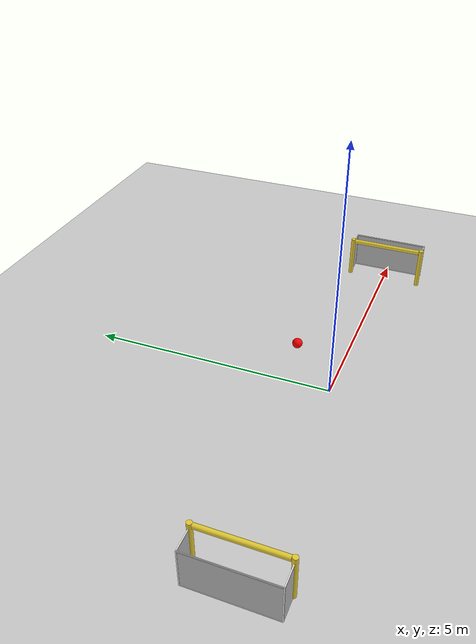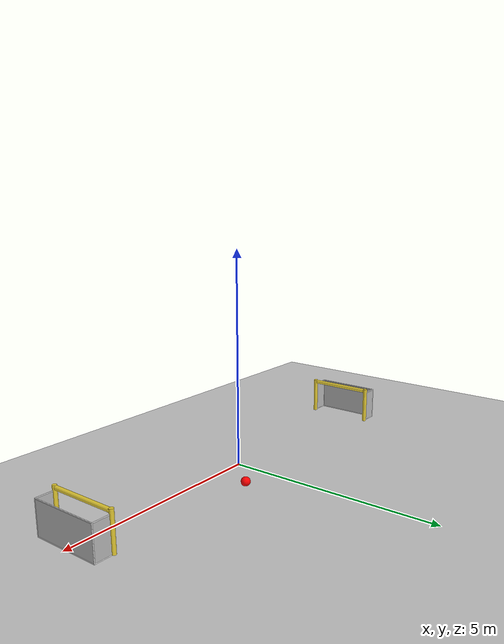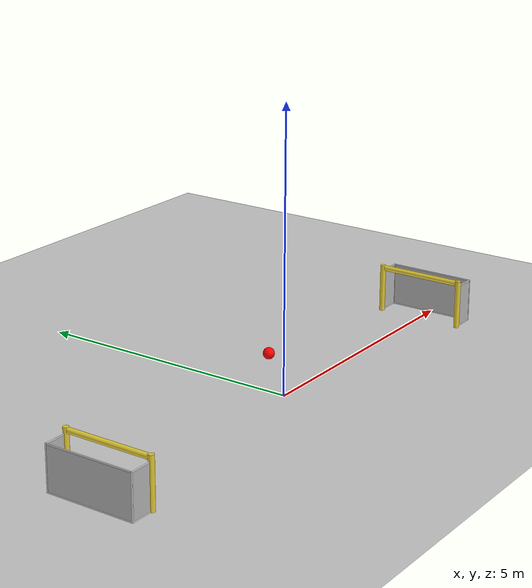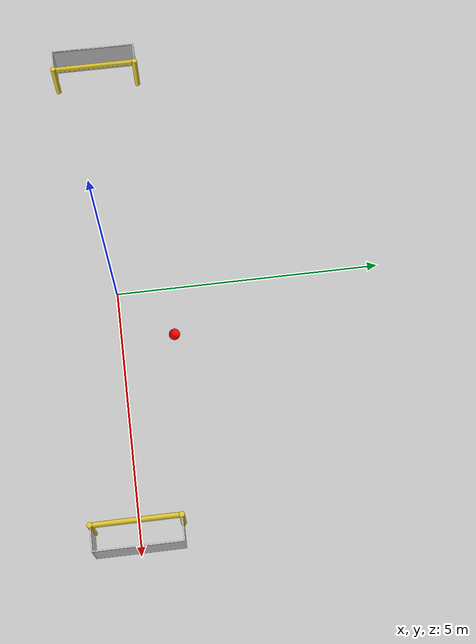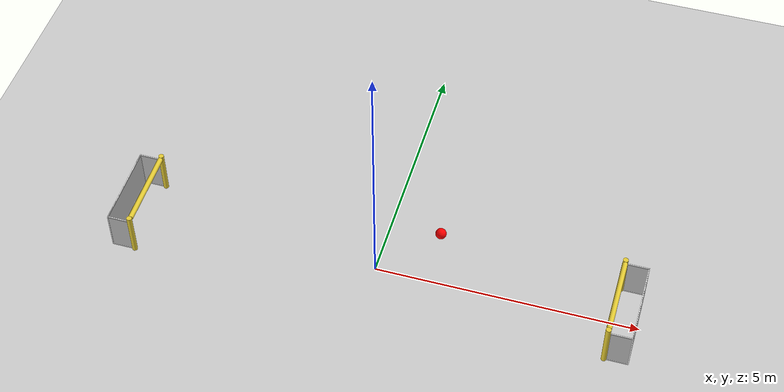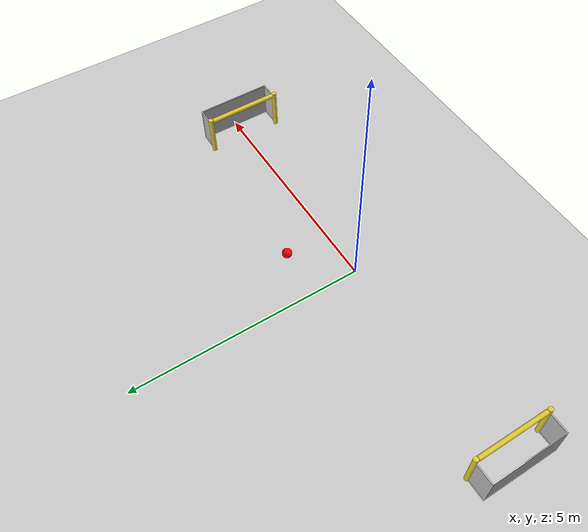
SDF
<sdf version="1.4">
 <world name="default">
  <include><uri>model://sun</uri></include>
  <include><uri>model://ground_plane</uri></include>
  <include><pose>-4.5 0 0 0 0 3.1416</pose><uri>model://robocup14_spl_goal</uri></include>
  <include><pose>4.5 0 0 0 0 0</pose><uri>model://robocup14_spl_goal</uri></include>
  <include><uri>model://soccer</uri></include>
 </world>
</sdf>

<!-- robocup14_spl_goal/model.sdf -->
<sdf version="1.5">
  <model name="RoboCup 2014 SPL Goal">
    <static>true</static>
    <link name="left_post">
      <pose>0 0.8 0.45 0 0 0</pose>
      <collision name="collision">
        <geometry>
          <cylinder>
            <radius>0.05</radius>
            <length>0.9</length>
          </cylinder>
        </geometry>
      </collision>
      <visual name="visual">
        <geometry>
          <cylinder>
            <radius>0.05</radius>
            <length>0.9</length>
          </cylinder>
        </geometry>
        <material>
          <script>
            <uri>file://media/materials/scripts/gazebo.material</uri>
            <name>Gazebo/ZincYellow</name>
          </script>
        </material>
      </visual>
    </link>
    <link name="left_support_horiz_lower">
      <pose>0.24 0.8 0.01 0 0 0</pose>
      <collision name="collision">
        <geometry>
          <box>
            <size>0.38 0.02 0.02</size>
          </box>
        </geometry>
      </collision>
      <visual name="visual">
        <geometry>
          <box>
            <size>0.38 0.02 0.02</size>
          </box>
        </geometry>
        <material>
          <script>
            <uri>file://media/materials/scripts/gazebo.material</uri>
            <name>Gazebo/White</name>
          </script>
        </material>
      </visual>
    </link>
    <link name="left_support_horiz_upper">
      <pose>0.24 0.8 0.79 0 0 0</pose>
      <collision name="collision">
        <geometry>
          <box>
            <size>0.38 0.02 0.02</size>
          </box>
        </geometry>
      </collision>
      <visual name="visual">
        <geometry>
          <box>
            <size>0.38 0.02 0.02</size>
          </box>
        </geometry>
        <material>
          <script>
            <uri>file://media/materials/scripts/gazebo.material</uri>
            <name>Gazebo/White</name>
          </script>
        </material>
      </visual>
    </link>
    <link name="left_support_vertical">
      <pose>0.44 0.8 0.4 0 1.5708 0</pose>
      <collision name="collision">
        <geometry>
          <box>
            <size>0.80 0.02 0.02</size>
          </box>
        </geometry>
      </collision>
      <visual name="visual">
        <geometry>
          <box>
            <size>0.80 0.02 0.02</size>
          </box>
        </geometry>
        <material>
          <script>
            <uri>file://media/materials/scripts/gazebo.material</uri>
            <name>Gazebo/White</name>
          </script>
        </material>
      </visual>
    </link>
    <link name="right_support_horiz_lower">
      <pose>0.24 -0.8 0.01 0 0 0</pose>
      <collision name="collision">
        <geometry>
          <box>
            <size>0.38 0.02 0.02</size>
          </box>
        </geometry>
      </collision>
      <visual name="visual">
        <geometry>
          <box>
            <size>0.38 0.02 0.02</size>
          </box>
        </geometry>
        <material>
          <script>
            <uri>file://media/materials/scripts/gazebo.material</uri>
            <name>Gazebo/White</name>
          </script>
        </material>
      </visual>
    </link>
    <link name="right_support_horiz_upper">
      <pose>0.24 -0.8 0.79 0 0 0</pose>
      <collision name="collision">
        <geometry>
          <box>
            <size>0.38 0.02 0.02</size>
          </box>
        </geometry>
      </collision>
      <visual name="visual">
        <geometry>
          <box>
            <size>0.38 0.02 0.02</size>
          </box>
        </geometry>
        <material>
          <script>
            <uri>file://media/materials/scripts/gazebo.material</uri>
            <name>Gazebo/White</name>
          </script>
        </material>
      </visual>
    </link>
    <link name="right_support_vertical">
      <pose>0.44 -0.8 0.4 0 1.5708 0</pose>
      <collision name="collision">
        <geometry>
          <box>
            <size>0.80 0.02 0.02</size>
          </box>
        </geometry>
      </collision>
      <visual name="visual">
        <geometry>
          <box>
            <size>0.80 0.02 0.02</size>
          </box>
        </geometry>
        <material>
          <script>
            <uri>file://media/materials/scripts/gazebo.material</uri>
            <name>Gazebo/White</name>
          </script>
        </material>
      </visual>
    </link>
    <link name="center_support_horiz_lower">
      <pose>0.44 0 0.01 0 1.5708 0</pose>
      <collision name="collision">
        <geometry>
          <box>
            <size>0.02 1.58 0.02</size>
          </box>
        </geometry>
      </collision>
      <visual name="visual">
        <geometry>
          <box>
            <size>0.02 1.58 0.02</size>
          </box>
        </geometry>
        <material>
          <script>
            <uri>file://media/materials/scripts/gazebo.material</uri>
            <name>Gazebo/White</name>
          </script>
        </material>
      </visual>
    </link>
    <link name="center_support_horiz_upper">
      <pose>0.44 0 0.79 0 1.5708 0</pose>
      <collision name="collision">
        <geometry>
          <box>
            <size>0.02 1.58 0.02</size>
          </box>
        </geometry>
      </collision>
      <visual name="visual">
        <geometry>
          <box>
            <size>0.02 1.58 0.02</size>
          </box>
        </geometry>
        <material>
          <script>
            <uri>file://media/materials/scripts/gazebo.material</uri>
            <name>Gazebo/White</name>
          </script>
        </material>
      </visual>
    </link>
    <link name="right_post">
      <pose>0 -0.8 0.45 0 0 0</pose>
      <collision name="collision">
        <geometry>
          <cylinder>
            <radius>0.05</radius>
            <length>0.9</length>
          </cylinder>
        </geometry>
      </collision>
      <visual name="visual">
        <geometry>
          <cylinder>
            <radius>0.05</radius>
            <length>0.9</length>
          </cylinder>
        </geometry>
        <material>
          <script>
            <uri>file://media/materials/scripts/gazebo.material</uri>
            <name>Gazebo/ZincYellow</name>
          </script>
        </material>
      </visual>
    </link>
    <link name="crossbar">
      <pose>0 0 0.85 1.57 1.57 0</pose>
      <collision name="collision">
        <geometry>
          <cylinder>
            <radius>0.05</radius>
            <length>1.5</length>
          </cylinder>
        </geometry>
      </collision>
      <visual name="visual">
        <geometry>
          <cylinder>
            <radius>0.05</radius>
            <length>1.5</length>
          </cylinder>
        </geometry>
        <material>
          <script>
            <uri>file://media/materials/scripts/gazebo.material</uri>
            <name>Gazebo/ZincYellow</name>
          </script>
        </material>
      </visual>
    </link>
    <link name="center_net">
      <pose>0.44 0 0.40 0 0 0</pose>
      <collision name="collision">
        <geometry>
          <box>
            <size>0.01 1.6 0.80</size>
          </box>
        </geometry>
      </collision>
      <visual name="visual">
        <geometry>
          <box>
            <size>0.01 1.6 0.80</size>
          </box>
        </geometry>
        <material>
          <script>
            <uri>model://../model_source/models/robocup09_spl_field/materials/scripts/</uri>
            <uri>model://../model_source/models/robocup09_spl_field/materials/textures/</uri>
            <name>RoboCup/Net</name>
          </script>
        </material>
      </visual>
    </link>
    <link name="left_net">
      <pose>0.24 0.8 0.40 0 0 0</pose>
      <collision name="collision">
        <geometry>
          <box>
            <size>0.38 0.01 0.76</size>
          </box>
        </geometry>
      </collision>
      <visual name="visual">
        <geometry>
          <box>
            <size>0.38 0.01 0.76</size>
          </box>
        </geometry>
        <material>
          <script>
            <uri>model://../model_source/models/robocup09_spl_field/materials/scripts/</uri>
            <uri>model://../model_source/models/robocup09_spl_field/materials/textures/</uri>
            <name>RoboCup/Net</name>
          </script>
        </material>
      </visual>
    </link>
    <link name="right_net">
      <pose>0.24 -0.8 0.40 0 0 0</pose>
      <collision name="collision">
        <geometry>
          <box>
            <size>0.38 0.01 0.76</size>
          </box>
        </geometry>
      </collision>
      <visual name="visual">
        <geometry>
          <box>
            <size>0.38 0.01 0.76</size>
          </box>
        </geometry>
        <material>
          <script>
            <uri>model://../model_source/models/robocup09_spl_field/materials/scripts/</uri>
            <uri>model://../model_source/models/robocup09_spl_field/materials/textures/</uri>
            <name>RoboCup/Net</name>
          </script>
        </material>
      </visual>
    </link>
  </model>
</sdf>

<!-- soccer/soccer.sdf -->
<sdf version="1.4">
   <model name="soccer">
   <pose>1 1 0.2 0 0 0</pose>
        <link name ='link'>
        <pose>0 0 0 0 0 0</pose>
<!-- inertia based on solid sphere 2/5 mr^2 -->
	<inertial>
           <pose>0 0 0 0 0 0</pose>
           <mass>0.42</mass>
           <inertia>
             <ixx>0.00195</ixx>
             <ixy>0.00195</ixy>
             <ixz>0.00195</ixz>
             <iyy>0</iyy>
             <iyz>0</iyz>
             <izz>0</izz>
           </inertia>
        </inertial>
        <collision name ='collision'>
           <geometry>
              <sphere><radius>0.1055</radius></sphere>
           </geometry>

	 <surface>
            <friction>
              <ode>
                <mu>1.00000</mu>
                <mu2>1.00000</mu2>
                <fdir1>0.000000 0.000000 0.000000</fdir1>
                <slip1>1.000000</slip1>
                <slip2>1.000000</slip2>
              </ode>
            </friction>
          </surface>
        </collision>
        <visual name ='visual'>
           <geometry>
               <sphere><radius>0.1055</radius></sphere>
           </geometry>
	   <material>
   		 <ambient>1 0 0 1</ambient>
    		 <diffuse>1 0 0 1</diffuse>
   		 <specular>0.1 0.1 0.1 1</specular>
   		 <emissive>0 0 0 0</emissive>
 	   </material>
        </visual>
	<sensor name="my_contact" type="contact">
	<plugin name="my_plugin" filename="libcontact.so"/>
          <contact>
            <collision>collision</collision>
          </contact>
        </sensor>
        </link>
	 <plugin filename="libsoccer_plugin.so" name="soccer_plugin" />
     </model>

</sdf>
